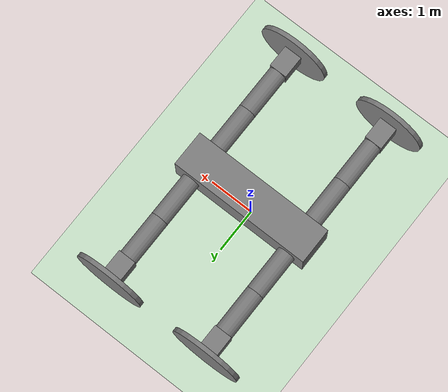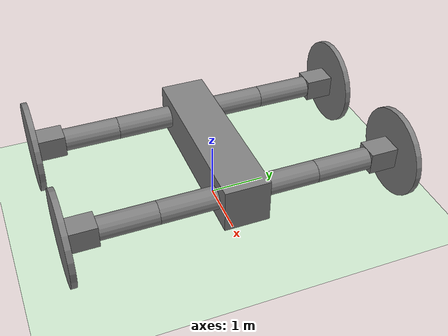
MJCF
<mujoco model="robot">
    <compiler angle="degree" coordinate="local" inertiafromgeom="true"/>
    <option integrator="RK4" timestep="0.01"/>
    <default >
        <geom conaffinity="0" condim="3" density="1.0" friction="1 0.5 0.5" margin="0.01" />
        <default class="leg">
            <joint type="hinge" range="-90 90" armature="1" damping="1" limited="true" frictionloss="10"/>
            <motor ctrlrange="-1 1" gear="100" forcerange="-100 100"/>
        </default>
        <default class="wheel">
            <joint type="hinge" armature="1" damping=".3" limited="false" frictionloss="0"/>
            <motor ctrlrange="-1 1" gear="100" forcerange="-150 150"/>
        </default>
    </default>
    <asset>
        <texture builtin="checker" height="100" name="texplane" rgb1="0 0 0" rgb2="0.8 0.8 0.8" type="2d" width="100"/>
        <material name="MatPlane" reflectance="0.5" shininess="1" specular="1" texrepeat="60 60" texture="texplane"/>
    </asset>
    <worldbody>
        <light directional="true" pos="-0.5 0.5 3" dir="0 0 -1" />
        <geom conaffinity="1" condim="3" material="MatPlane" name="floor" pos="0 0 0" rgba="0.8 0.9 0.8 1" size="40 40 40" type="plane"/>
        <!-- 构建主体 -->
        <body name="torso" pos="0 0 1">
            <joint armature="0" damping="0" limited="false" margin="0.01" name="root" pos="0 0 0" type="free"/>
            <geom name="torso_geom" pos="0 0 0" type="box" size="1.6 0.4 0.4" />
            <!-- 构建左前1腿 -->
            <body name="lf_leg1" pos="1.2 0.9 0">
                <geom name="lf_leg1_geom" pos="0 0 0" fromto="0 -0.5 0 0 0.5 0" size="0.2" type="capsule"/>
                <joint axis="1 0 0" name="lf_leg1_Joint_x" pos="0 -0.5 0" class="leg"/>
                <joint axis="0 0 1" name="lf_leg1_Joint_z" pos="0 -0.5 0" class="leg"/>
                <!-- 构建左前2腿 -->
                <body name="lf_leg2" pos="0 1 0">
                    <geom name="lf_leg2_geom" pos="0 0 0" fromto="0 -0.5 0 0 0.5 0" size="0.2" type="capsule"/>
                    <joint axis="1 0 0" name="lf_leg2_Joint_x" pos="0 -0.5 0" class="leg"/>
                    <joint axis="0 0 1" name="lf_leg2_Joint_z" pos="0 -0.5 0" class="leg"/>

                    <!-- 构建左前3腿 -->
                    <body name="lf_leg3" pos="0 0.75 0">
                        <geom name="lf_leg3_geom" pos="0 0 0" fromto="0 -0.25 0 0 0.25 0" size="0.2" type="box"/>
                        <joint axis="1 0 0" name="lf_leg3_Joint_x" pos="0 -0.25 0" class="leg"/>
                        <joint axis="0 0 1" name="lf_leg3_Joint_z" pos="0 -0.25 0" class="leg"/>
                        <!-- 构建左前3腿肌肉节点 -->
                        <body name ="lf_motor" pos="0 0.3 0">
                            <geom name ="lf_motor_geom" pos="0 0 0" type="cylinder" size="0.8" fromto="0 -0.05 0 0 0.05 0"/>
                            <joint axis="0 1 0" name="lf_motor_y" pos="0 -0.1 0" class="wheel"/>
                        </body>
                    </body>
                </body>
            </body>
            <!-- 构建右前1腿 -->
            <body name="rf_leg1" pos="1.2 -0.9 0">
                <geom name="rf_leg1_geom" pos="0 0 0" fromto="0 -0.5 0 0 0.5 0" size="0.2" type="capsule"/>
                <joint axis="1 0 0" name="rf_leg1_Joint_x" pos="0 0.5 0" class="leg"/>
                <joint axis="0 0 1" name="rf_leg1_Joint_z" pos="0 0.5 0" class="leg"/>

                <!-- 构建右前2腿 -->
                <body name="rf_leg2" pos="0 -1 0">
                    <geom name="rf_leg2_geom" pos="0 0 0" fromto="0 -0.5 0 0 0.5 0" size="0.2" type="capsule"/>
                    <joint axis="1 0 0" name="rf_leg2_Joint_x" pos="0 0.5 0" class="leg"/>
                    <joint axis="0 0 1" name="rf_leg2_Joint_z" pos="0 0.5 0" class="leg"/>

                    <!-- 构建右前3腿 -->
                    <body name="rf_leg3" pos="0 -0.75 0">
                        <geom name="rf_leg3_geom" pos="0 0 0" fromto="0 -0.25 0 0 0.25 0" size="0.2" type="box"/>
                        <joint axis="1 0 0" name="rf_leg3_Joint_x" pos="0 0.25 0" class="leg"/>
                        <joint axis="0 0 1" name="rf_leg3_Joint_z" pos="0 0.25 0" class="leg"/>
                        <body name ="rf_motor" pos="0 -0.3 0">
                            <geom name ="rf_motor_geom" pos="0 0 0" type="cylinder" size="0.8" fromto="0 -0.05 0 0 0.05 0"/>
                            <joint axis="0 1 0" name="rf_motor_y" pos="0 0.1 0" class="wheel"/>
                        </body>
                    </body>
                </body>
            </body>
            <!-- 构建左后1腿 -->
            <body name="lb_leg1" pos="-1.2 0.9 0">
                <geom name="lb_leg1_geom" pos="0 0 0" fromto="0 -0.5 0 0 0.5 0" size="0.2" type="capsule"/>
                <joint axis="1 0 0" name="lb_leg1_Joint_x" pos="0 -0.5 0" class="leg"/>
                <joint axis="0 0 1" name="lb_leg1_Joint_z" pos="0 -0.5 0" class="leg"/>

                <!-- 构建左后2腿 -->
                <body name="lb_leg2" pos="0 1 0">
                    <geom name="lb_leg2_geom" pos="0 0 0" fromto="0 -0.5 0 0 0.5 0" size="0.2" type="capsule"/>
                    <joint axis="1 0 0" name="lb_leg2_Joint_x" pos="0 -0.5 0" class="leg"/>
                    <joint axis="0 0 1" name="lb_leg2_Joint_z" pos="0 -0.5 0" class="leg"/>
                    <!-- 构建左后3腿 -->
                    <body name="lb_leg3" pos="0 0.75 0">
                        <geom name="lb_leg3_geom" pos="0 0 0" fromto="0 -0.25 0 0 0.25 0" size="0.2" type="box"/>
                        <joint axis="1 0 0" name="lb_leg3_Joint_x" pos="0 -0.25 0" class="leg"/>
                        <joint axis="0 0 1" name="lb_leg3_Joint_z" pos="0 -0.25 0" class="leg"/>
                        <body name ="lb_motor" pos="0 0.3 0">
                            <geom name ="lb_motor_geom" pos="0 0 0" type="cylinder" size="0.8" fromto="0 -0.05 0 0 0.05 0"/>
                            <joint axis="0 1 0" name="lb_motor_y" pos="0 -0.1 0" class="wheel"/>
                        </body>
                    </body>
                </body>
            </body>
            <!-- 构建右后1腿 -->
            <body name="rb_leg1" pos="-1.2 -0.9 0">
                <geom name="rb_leg1_geom" pos="0 0 0" fromto="0 -0.5 0 0 0.5 0" size="0.2" type="capsule"/>
                <joint axis="1 0 0" name="rb_leg1_Joint_x" pos="0 0.5 0" class="leg"/>
                <joint axis="0 0 1" name="rb_leg1_Joint_z" pos="0 0.5 0" class="leg"/>

                <!-- 构建右后2腿 -->
                <body name="rb_leg2" pos="0 -1 0">
                    <geom name="rb_leg2_geom" pos="0 0 0" fromto="0 -0.5 0 0 0.5 0" size="0.2" type="capsule"/>
                    <joint axis="1 0 0" name="rb_leg2_Joint_x" pos="0 0.5 0" class="leg"/>
                    <joint axis="0 0 1" name="rb_leg2_Joint_z" pos="0 0.5 0" class="leg"/>

                    <!-- 构建右后3腿 -->
                    <body name="rb_leg3" pos="0 -0.75 0">
                        <geom name="rb_leg3_geom" pos="0 0 0" fromto="0 -0.25 0 0 0.25 0" size="0.2" type="box"/>
                        <joint axis="1 0 0" name="rb_leg3_Joint_x" pos="0 0.25 0" class="leg"/>
                        <joint axis="0 0 1" name="rb_leg3_Joint_z" pos="0 0.25 0" class="leg"/>
                        <body name ="rb_motor" pos="0 -0.3 0">
                            <geom name ="rb_motor_geom" pos="0 0 0" type="cylinder" size="0.8" fromto="0 -0.05 0 0 0.05 0"/>
                            <joint axis="0 1 0" name="rb_motor_y" pos="0 0.1 0" class="wheel"/>
                        </body>
                    </body>
                </body>
            </body>

        </body>
    </worldbody>
    <!-- 肌肉 -->

    <actuator>

        <motor name="lf_leg1_motor_x" joint="lf_leg1_Joint_x" class="leg"/>
        <motor name="lf_leg1_motor_z" joint="lf_leg1_Joint_z" class="leg"/>
        <motor name="lf_leg2_motor_x" joint="lf_leg2_Joint_x" class="leg"/>
        <motor name="lf_leg2_motor_z" joint="lf_leg2_Joint_z" class="leg"/>
        <motor name="lf_leg3_motor_x" joint="lf_leg3_Joint_x" class="leg"/>
        <motor name="lf_leg3_motor_z" joint="lf_leg3_Joint_z" class="leg"/>
        <motor name="rf_leg1_motor_x" joint="rf_leg1_Joint_x" class="leg"/>
        <motor name="rf_leg1_motor_z" joint="rf_leg1_Joint_z" class="leg"/>
        <motor name="rf_leg2_motor_x" joint="rf_leg2_Joint_x" class="leg"/>
        <motor name="rf_leg2_motor_z" joint="rf_leg2_Joint_z" class="leg"/>
        <motor name="rf_leg3_motor_x" joint="rf_leg3_Joint_x" class="leg"/>
        <motor name="rf_leg3_motor_z" joint="rf_leg3_Joint_z" class="leg"/>
        <motor name="lb_leg1_motor_x" joint="lb_leg1_Joint_x" class="leg"/>
        <motor name="lb_leg2_motor_x" joint="lb_leg2_Joint_x" class="leg"/>
        <motor name="lb_leg3_motor_x" joint="lb_leg3_Joint_x" class="leg"/>
        <motor name="rb_leg1_motor_x" joint="rb_leg1_Joint_x" class="leg"/>
        <motor name="rb_leg2_motor_x" joint="rb_leg2_Joint_x" class="leg"/>
        <motor name="rb_leg3_motor_x" joint="rb_leg3_Joint_x" class="leg"/>
        <motor name="lb_leg1_motor_z" joint="lb_leg1_Joint_z" class="leg"/>
        <motor name="lb_leg2_motor_z" joint="lb_leg2_Joint_z" class="leg"/>
        <motor name="lb_leg3_motor_z" joint="lb_leg3_Joint_z" class="leg"/>
        <motor name="rb_leg1_motor_z" joint="rb_leg1_Joint_z" class="leg"/>
        <motor name="rb_leg2_motor_z" joint="rb_leg2_Joint_z" class="leg"/>
        <motor name="rb_leg3_motor_z" joint="rb_leg3_Joint_z" class="leg"/>
        <motor name="lf_motor" joint="lf_motor_y" class="wheel"/>
        <motor name="rf_motor" joint="rf_motor_y" class="wheel"/>
        <motor name="lb_motor" joint="lb_motor_y" class="wheel"/>
        <motor name="rb_motor" joint="rb_motor_y" class="wheel"/>
    </actuator>
</mujoco>
